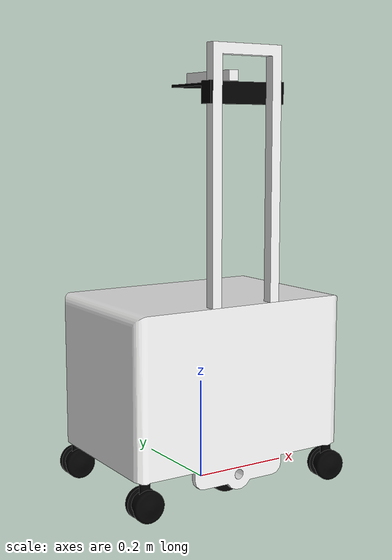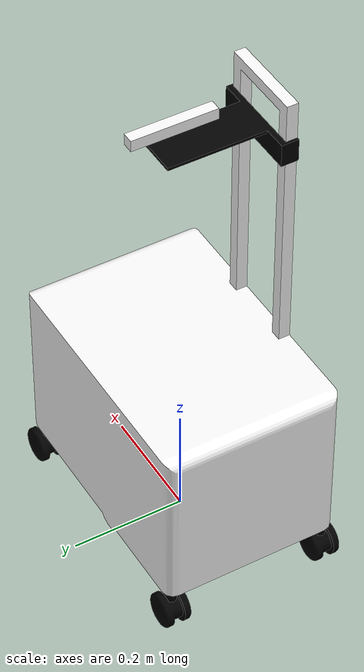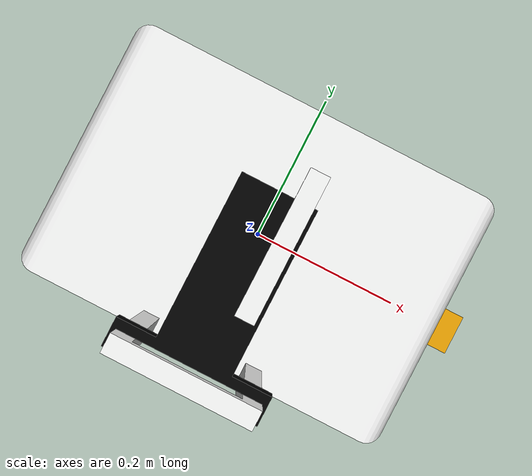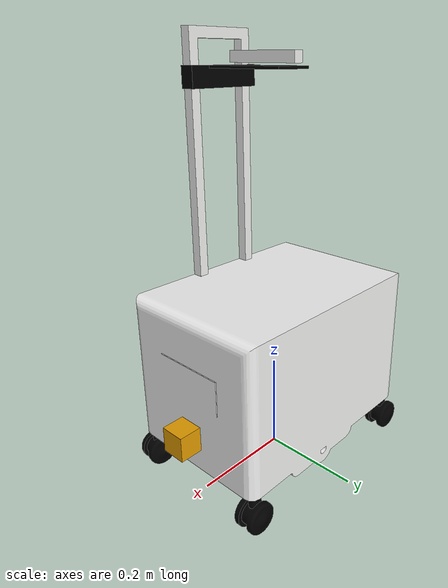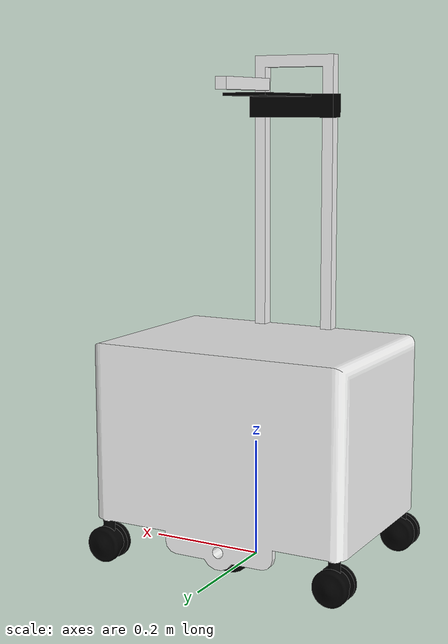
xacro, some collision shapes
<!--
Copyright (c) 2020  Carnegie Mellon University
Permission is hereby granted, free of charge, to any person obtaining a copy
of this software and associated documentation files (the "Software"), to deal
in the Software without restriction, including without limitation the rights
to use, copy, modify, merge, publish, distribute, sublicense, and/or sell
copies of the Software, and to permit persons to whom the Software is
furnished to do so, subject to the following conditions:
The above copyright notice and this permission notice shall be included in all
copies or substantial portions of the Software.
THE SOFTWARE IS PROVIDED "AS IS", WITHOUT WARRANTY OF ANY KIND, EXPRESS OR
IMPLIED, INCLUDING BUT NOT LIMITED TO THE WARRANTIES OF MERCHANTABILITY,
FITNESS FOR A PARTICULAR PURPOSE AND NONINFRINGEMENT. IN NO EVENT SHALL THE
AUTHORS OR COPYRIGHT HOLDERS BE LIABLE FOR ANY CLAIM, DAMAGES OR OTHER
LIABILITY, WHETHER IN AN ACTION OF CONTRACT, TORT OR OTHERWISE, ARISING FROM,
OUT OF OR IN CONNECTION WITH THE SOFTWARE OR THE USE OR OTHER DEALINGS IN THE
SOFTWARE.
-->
<?xml version="1.0"?>

<robot name="cabot" xmlns:xacro="http://ros.org/wiki/xacro">
  <!-- robot rotation center offset -->
  <xacro:arg name="offset" default="0" />
  <!-- flag to extend hokuyo lidar range in simulation -->
  <xacro:arg name="extended" default="0" />

  <!-- include xacro macros -->
  <xacro:include filename="$(find cabot_description)/urdf/cabot1-f_description.urdf" />
  <xacro:include filename="$(find cabot_description)/urdf/sensors/hokuyo_ust_20lx.urdf.xacro"/>
  <xacro:include filename="$(find cabot_description)/urdf/sensors/zed.urdf.xacro"/>

  <!-- content -->

  <!-- cabot description -->
  <cabot offset="$(arg offset)"/>

  <!-- add link to lidar and camera -->
  <link name="lidar_link">
  </link>
  <joint name="lidar_base" type="fixed">
    <origin xyz="0.25 0.0 0.10" rpy="0 0 0"/>
    <parent link="base_link"/>
    <child link="lidar_link"/>
  </joint>
  <link name="camera_link">
  </link>
  <joint name="camera_base" type="fixed">
    <origin xyz="0.025 0.0 0.755" rpy="0 0 0"/>
    <parent link="base_link"/>
    <child link="camera_link"/>
  </joint>

  <!-- lidar and zed camera description -->
  <sensor_hokuyo_ust_20lx parent="lidar_link" extended="$(arg extended)"/>
  <sensor_zed parent="camera_link"/>
</robot>

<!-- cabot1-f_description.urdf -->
<robot name="cabot_description"
  xmlns:xacro="http://ros.org/wiki/xacro">
  <xacro:property name="M_PI" value="3.1415926535897931" />

  <xacro:macro name="cabot" params="offset:=^ lefty:=^|1">
    <gazebo>
      <plugin name="differential_drive_controller" filename="libgazebo_ros_diff_drive.so">
        <legacyMode>false</legacyMode>
        <alwaysOn>true</alwaysOn>
        <publishWheelTF>true</publishWheelTF>
        <publishTf>true</publishTf>
        <publishOdomTF>true</publishOdomTF>
        <publishWheelJointState>true</publishWheelJointState>
        <updateRate>100.0</updateRate>
        <leftJoint>awl_joint</leftJoint>
        <rightJoint>awr_joint</rightJoint>
        <wheelSeparation>0.165</wheelSeparation>
        <wheelDiameter>0.09</wheelDiameter>
        <wheelAcceleration>1.0</wheelAcceleration>
        <wheelTorque>20</wheelTorque>
        <commandTopic>/cabot/cmd_vel</commandTopic>
        <odometrySource>0</odometrySource>
        <odometryTopic>/odom</odometryTopic>
        <odometryFrame>odom</odometryFrame>
        <robotBaseFrame>base_footprint</robotBaseFrame>
      </plugin>
    </gazebo>

    <xacro:macro name="gazebo_wheel" params="reference">
      <gazebo reference="${reference}">
        <mu1>1.0</mu1>
        <mu2>1.0</mu2>
        <kp>1000000.0</kp>
        <kd>100.0</kd>
        <minDepth>0.001</minDepth>
        <maxVel>1.0</maxVel>
      </gazebo>
    </xacro:macro>

    <xacro:macro name="gazebo_free_wheel" params="reference">
      <gazebo reference="${reference}">
        <material>Gazebo/Black</material>
        <mu1>0.0</mu1>
        <mu2>0.0</mu2>
        <kp>1000000.0</kp>
        <kd>100.0</kd>
        <minDepth>0.001</minDepth>
        <maxVel>1.0</maxVel>
      </gazebo>
    </xacro:macro>

    <gazebo_wheel reference="awl_link"/>
    <gazebo_wheel reference="awr_link"/>
    <gazebo_free_wheel reference="vc1_link"/>
    <gazebo_free_wheel reference="vc2_link"/>

    <xacro:macro name="alminium_material">
      <material name="alminium">
        <color rgba="0.9576 0.9594 0.9572 1" />
      </material>
    </xacro:macro>
    <xacro:macro name="black_material">
      <material name="black">
        <color rgba="0 0 0 1" />
      </material>
    </xacro:macro>

    <link name="base_footprint"/>
    <link name="base_control_shift"/>
    <link name="imu_frame"/>

    <joint name="base_joint" type="fixed">
      <origin xyz="0 0 0.045" rpy="0 0 0" />
      <parent link="base_footprint"/>
      <child link="base_control_shift" />
    </joint>

    <joint name="control_center_joint" type="fixed">
      <origin xyz="0 ${offset} 0" rpy="0 0 0" />
      <parent link="base_control_shift"/>
      <child link="base_link" />
    </joint>

    <joint name="imu_joint" type="fixed">
      <origin xyz="-0.02 0 0.135" rpy="0 0 0" />
      <parent link="base_link"/>
      <child link="imu_frame" />
    </joint>

    <link name="base_link">
      <inertial>
        <origin xyz="0 0 0.175" rpy="0 0 0" />
        <mass value="16" />
        <inertia ixx="0.60813333" ixy="0" ixz="0" iyy="0.40213333" iyz="0" izz="0.41026667" />
      </inertial>
      <visual>
        <origin xyz="0 0 0" rpy="${-M_PI/2} 0 0" />
        <geometry>
          <mesh filename="package://cabot_description/meshes/base_link.STL" />
        </geometry>

        <alminium_material/>

      </visual>
      <collision>
        <origin xyz="0 0 0.175" rpy="0 0 0" />
        <geometry>
          <box size="0.41 0.31 0.30"/>
        </geometry>
      </collision>
    </link>

    <xacro:macro name="wheel" params="name xyz rpy">
      <link name="${name}_link">
        <inertial>
          <origin xyz="0 0 0.0175" rpy="0 0 0" />
          <mass value="0.2" />
          <inertia ixx="0.00048667" ixy="0" ixz="0" iyy="0.00048667" iyz="0" izz="0.00081" />
        </inertial>
        <visual>
          <origin xyz="0 0 0" rpy="0 0 0" />
          <geometry>
            <cylinder length="0.035" radius="0.045"/>
          </geometry>
          <black_material/>
        </visual>
        <collision>
          <origin xyz="0 0 0" rpy="0 0 0" />
          <geometry>
            <cylinder length="0.035" radius="0.045"/>
          </geometry>
        </collision>
      </link>
      <joint name="${name}_joint" type="continuous">
        <origin xyz="${xyz}" rpy="${rpy}" />
        <parent link="base_link" />
        <child link="${name}_link" />
        <axis xyz="0 0 1" />
        <limit effort="0" velocity="1.0" />
      </joint>
    </xacro:macro>

    <wheel name="awl" xyz="0 0.0825 0" rpy="${-M_PI/2} 0 0"/>
    <wheel name="awr" xyz="0 -0.0825 0" rpy="${-M_PI/2} 0 0"/>

    <xacro:macro name="free_wheel" params="name xyz">
      <link name="${name}_link">
        <inertial>
          <origin xyz="-0.012882 0 0" rpy="0 0 0" />
          <mass value="0.0" />
          <inertia ixx="0.0" ixy="0.0" ixz="0.0" iyy="0.0" iyz="0.0" izz="0.0" />
        </inertial>
        <visual>
          <origin xyz="0 0 0" rpy="0 0 0" />
          <geometry>
            <mesh filename="package://cabot_description/meshes/${name}_Link.STL" />
          </geometry>

          <black_material/>

        </visual>
      </link>
      <joint name="${name}_joint" type="fixed">
        <origin xyz="${xyz}" rpy="0 ${-M_PI/2} ${M_PI/2}" />
        <parent link="base_link" />
        <child link="${name}_link" />
        <axis xyz="1 0 0" />
      </joint>
    </xacro:macro>

    <free_wheel name="pw1" xyz="-0.21 -0.14 0"/>
    <free_wheel name="pw2" xyz="0.21 -0.14 0"/>
    <free_wheel name="pw3" xyz="-0.21 0.14 0"/>
    <free_wheel name="pw4" xyz="0.21 0.14 0"/>

    <xacro:macro name="virtual_caster" params="name xyz">
      <link name="${name}_link">
        <inertial>
          <origin xyz="0 0 0" rpy="0 0 0" />
          <mass value="0.2" />
          <inertia ixx="0.000162" ixy="0.0" ixz="0.0" iyy="0.000162" iyz="0.0" izz="0.000162" />
        </inertial>
        <collision>
          <origin xyz="0 0 0" rpy="0 0 0" />
          <geometry>
            <sphere radius="0.045"/>
          </geometry>
        </collision>
      </link>
      <joint name="${name}_joint" type="fixed">
        <origin xyz="${xyz}" rpy="0 0 0" />
        <parent link="base_link" />
        <child link="${name}_link" />
        <axis xyz="1 0 0" />
      </joint>
    </xacro:macro>

    <virtual_caster name="vc1" xyz="0.21 0 0"/>
    <virtual_caster name="vc2" xyz="-0.21 0 0"/>

    <link name="handle_link">
      <inertial>
        <origin xyz="-4.3092E-17 0.26035 0.01" rpy="0 0 ${M_PI}" />
        <mass value="0.4228" />
        <inertia ixx="0.0091197" ixy="2.2522E-18" ixz="4.8405E-20" iyy="0.0016715" iyz="1.0605E-19" izz="0.010763" />
      </inertial>
      <visual>
        <origin xyz="0 0 0" rpy="0 0 0" />
        <geometry>
          <mesh filename="package://cabot_description/meshes/handle_Link.STL" />
        </geometry>

        <alminium_material/>

      </visual>
      <collision>
        <origin xyz="0 0 0" rpy="0 0 0" />
        <geometry>
          <mesh filename="package://cabot_description/meshes/handle_Link.STL" />
        </geometry>
      </collision>
    </link>
    <joint name="handle_joint" type="fixed">
      <xacro:if value="${lefty}">
        <origin xyz="0 -0.156 0.3325 " rpy="-${M_PI/2} ${M_PI} 0" />
      </xacro:if>
      <xacro:unless value="${lefty}">
        <origin xyz="0 -0.156 0.3325 " rpy="${M_PI/2} 0 0" />
      </xacro:unless>
      <parent link="base_link" />
      <child link="handle_link" />
      <axis xyz="0 0 0" />
    </joint>

    <xacro:macro name="sensor_base" params="name z">
      <link name="${name}_link">
        <inertial>
          <origin xyz="0 0.067278 0.011611" rpy="0 0 0" />
          <mass value="0.1383" />
          <inertia ixx="0.00047241" ixy="3.7914E-19" ixz="-1.6873E-19" iyy="0.00023852" iyz="5.537E-05" izz="0.00067032" />
        </inertial>
        <visual>
          <origin xyz="0 0 0" rpy="0 0 0" />
          <geometry>
            <mesh filename="package://cabot_description/meshes/s1_Link.STL" />
          </geometry>

          <black_material/>

        </visual>
      </link>
      <joint name="${name}_joint" type="fixed">
        <xacro:if value="${lefty}">
          <origin xyz="0 -0.156 ${z}" rpy="0 ${M_PI} 0" />
        </xacro:if>
        <xacro:unless value="${lefty}">
          <origin xyz="0 0.156 ${z}" rpy="${M_PI} 0 0" />
        </xacro:unless>

        <parent link="base_link" />
        <child link="${name}_link" />
        <axis xyz="0 0 0" />
      </joint>
    </xacro:macro>

    <sensor_base name="s1" z="0.74"/>

  </xacro:macro>
</robot>

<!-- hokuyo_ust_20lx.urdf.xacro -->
<robot name="sensor_hokuyo_ust_20lx"
	xmlns:xacro="http://ros.org/wiki/xacro">
	<xacro:macro name="turtlebot_sim_laser_range_finder" params="samples:=1080 resolution:=0.25 min_angle:=-1.57 max_angle:=1.57">
		<gazebo reference="hokuyo_link">
			<sensor type="ray" name="head_hokuyo_sensor">
				<pose>0 0 0 0 0 0</pose>
				<visualize>true</visualize>
				<update_rate>10</update_rate>
				<ray>
					<scan>
						<horizontal>
							<samples>${samples}</samples>
							<resolution>${resolution}</resolution>
							<min_angle>${min_angle}</min_angle>
							<max_angle>${max_angle}</max_angle>
						</horizontal>
					</scan>
					<range>
						<min>0.06</min>
						<max>20.0</max>
						<resolution>0.01</resolution>
					</range>
					<noise>
						<type>gaussian</type>
						<!-- x 1.3 for "+-40mm" accuracy for 20lx. Original value is 0.01 -->
						<mean>0.0</mean>
						<stddev>0.013</stddev>
					</noise>
				</ray>
				<plugin name="gazebo_ros_head_hokuyo_controller" filename="libgazebo_ros_laser.so">
					<topicName>/scan</topicName>
					<frameName>hokuyo_link</frameName>
				</plugin>
			</sensor>
		</gazebo>
	</xacro:macro>
	<!--xacro:include filename="$(find turtlebot_description)/urdf/turtlebot_properties.urdf.xacro"/-->

	<xacro:macro name="sensor_hokuyo_ust_20lx" params="parent extended:=0 min_angle:=-1.57 max_angle:=1.57">
		<link name="hokuyo_link">
			<collision>
				<origin xyz="0 0 0" rpy="0 0 0"/>
				<geometry>
					<box size="0.05 0.05 0.05"/>
				</geometry>
			</collision>
			<visual>
				<origin xyz="0 0 0" rpy="0 0 0"/>
				<geometry>
					<mesh filename="package://cabot_description/meshes/sensors/hokuyo.dae"/>
				</geometry>
			</visual>
			<inertial>
				<mass value="1e-5" />
				<origin xyz="0 0 0" rpy="0 0 0"/>
				<inertia ixx="1e-6" ixy="0" ixz="0" iyy="1e-6" iyz="0" izz="1e-6" />
			</inertial>
		</link>
		<joint name="hokuyo_joint" type="fixed">
			<origin xyz="0.0 0.0 0.0" rpy="0 0 0"/>
			<parent link="${parent}"/>
			<child link="hokuyo_link"/>
		</joint>
		<!-- Hokuyo sensor for simulation -->
		<xacro:unless value="$(arg extended)">
			<turtlebot_sim_laser_range_finder min_angle="${min_angle}" max_angle="${max_angle}"/>
		</xacro:unless>
		<xacro:if value="$(arg extended)">
			<turtlebot_sim_laser_range_finder samples="1440" min_angle="-3.5" max_angle="2.2"/>
		</xacro:if>
	</xacro:macro>
</robot>

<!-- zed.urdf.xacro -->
<robot name="sensor_zed"
	xmlns:xacro="http://ros.org/wiki/xacro">
	<macro name="sensor_zed" params="parent offset:=0">
		<link name="zed_link">
			<collision>
				<origin xyz="0 0 0" rpy="0 0 0" />
				<geometry>
					<box size="0.02 0.15 0.02" />
				</geometry>
			</collision>
			<visual>
				<origin xyz="0 0 0" rpy="0 0 0" />
				<geometry>
					<mesh filename="package://cabot_description/meshes/thirdparty/zed2.stl"/>
				</geometry>
      			<material name="alminium">
        			<color rgba="0.9576 0.9594 0.9572 1" />
      			</material>
			</visual>
			<inertial>
				<mass value="1e-5" />
				<origin xyz="0 0 0" rpy="0 0 0" />
				<inertia ixx="1e-6" ixy="0" ixz="0" iyy="1e-6" iyz="0" izz="1e-6" />
			</inertial>
		</link>
		<joint name="zed_joint" type="fixed">
			<origin xyz="0.0 ${offset} 0.0" rpy="0 0 0" />
			<parent link="${parent}" />
			<child link="zed_link" />
		</joint>
	</macro>
</robot>
